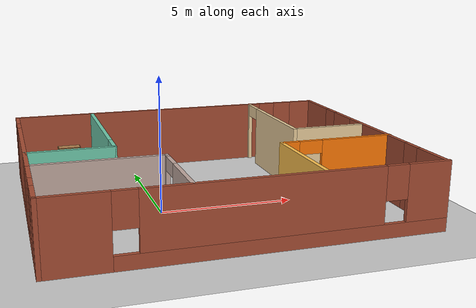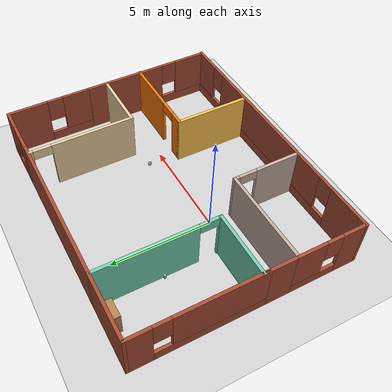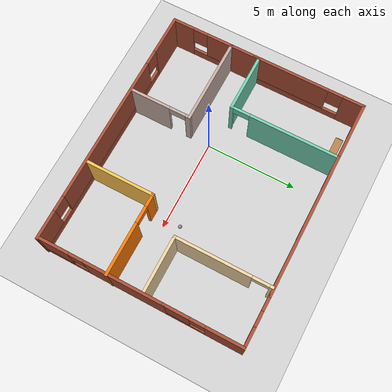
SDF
<sdf version="1.7">
 <world name="default">
  <model name="ground_plane">
   <static>1</static>
   <link name="link">
    <collision name="collision_collision">
     <geometry><plane><normal>0 0 1</normal><size>100 100</size></plane></geometry>
     <surface>
      <contact><collide_bitmask>65535</collide_bitmask></contact>
      <friction><ode><mu>100</mu><mu2>50</mu2></ode></friction>
     </surface>
    </collision>
    <visual name="visual_visual">
     <cast_shadows>0</cast_shadows>
     <geometry><plane><normal>0 0 1</normal><size>100 100</size></plane></geometry>
     <material>
      <script><uri>file://media/materials/scripts/gazebo.material</uri><name>Gazebo/Grey</name></script>
     </material>
    </visual>
   </link>
  </model>
  <model name="bookshelf">
   <static>1</static>
   <link name="link">
    <inertial><mass>1</mass></inertial>
    <collision name="collision_back">
     <pose>0 0.005 0.6 0 -0 0</pose>
     <geometry><box><size>0.9 0.01 1.2</size></box></geometry>
    </collision>
    <visual name="visual_visual1">
     <pose>0 0.005 0.6 0 -0 0</pose>
     <geometry><box><size>0.9 0.01 1.2</size></box></geometry>
     <material>
      <script><uri>file://media/materials/scripts/gazebo.material</uri><name>Gazebo/Wood</name></script>
     </material>
    </visual>
    <collision name="collision_left_side">
     <pose>0.45 -0.195 0.6 0 -0 0</pose>
     <geometry><box><size>0.02 0.4 1.2</size></box></geometry>
    </collision>
    <visual name="visual_visual2">
     <pose>0.45 -0.195 0.6 0 -0 0</pose>
     <geometry><box><size>0.02 0.4 1.2</size></box></geometry>
     <material>
      <script><uri>file://media/materials/scripts/gazebo.material</uri><name>Gazebo/Wood</name></script>
     </material>
    </visual>
    <collision name="collision_right_side">
     <pose>-0.45 -0.195 0.6 0 -0 0</pose>
     <geometry><box><size>0.02 0.4 1.2</size></box></geometry>
    </collision>
    <visual name="visual_visual3">
     <pose>-0.45 -0.195 0.6 0 -0 0</pose>
     <geometry><box><size>0.02 0.4 1.2</size></box></geometry>
     <material>
      <script><uri>file://media/materials/scripts/gazebo.material</uri><name>Gazebo/Wood</name></script>
     </material>
    </visual>
    <collision name="collision_bottom">
     <pose>0 -0.195 0.03 0 -0 0</pose>
     <geometry><box><size>0.88 0.4 0.06</size></box></geometry>
    </collision>
    <visual name="visual_visual4">
     <pose>0 -0.195 0.03 0 -0 0</pose>
     <geometry><box><size>0.88 0.4 0.06</size></box></geometry>
     <material>
      <script><uri>file://media/materials/scripts/gazebo.material</uri><name>Gazebo/Wood</name></script>
     </material>
    </visual>
    <collision name="collision_top">
     <pose>0 -0.195 1.19 0 -0 0</pose>
     <geometry><box><size>0.88 0.4 0.02</size></box></geometry>
    </collision>
    <visual name="visual_visual5">
     <pose>0 -0.195 1.19 0 -0 0</pose>
     <geometry><box><size>0.88 0.4 0.02</size></box></geometry>
     <material>
      <script><uri>file://media/materials/scripts/gazebo.material</uri><name>Gazebo/Wood</name></script>
     </material>
    </visual>
    <collision name="collision_low_shelf">
     <pose>0 -0.195 0.43 0 -0 0</pose>
     <geometry><box><size>0.88 0.4 0.02</size></box></geometry>
    </collision>
    <visual name="visual_visual6">
     <pose>0 -0.195 0.43 0 -0 0</pose>
     <geometry><box><size>0.88 0.4 0.02</size></box></geometry>
     <material>
      <script><uri>file://media/materials/scripts/gazebo.material</uri><name>Gazebo/Wood</name></script>
     </material>
    </visual>
    <collision name="collision_high_shelf">
     <pose>0 -0.195 0.8 0 -0 0</pose>
     <geometry><box><size>0.88 0.4 0.02</size></box></geometry>
    </collision>
    <visual name="visual_visual7">
     <pose>0 -0.195 0.8 0 -0 0</pose>
     <geometry><box><size>0.88 0.4 0.02</size></box></geometry>
     <material>
      <script><uri>file://media/materials/scripts/gazebo.material</uri><name>Gazebo/Wood</name></script>
     </material>
    </visual>
   </link>
   <pose>-2.61093 6.16399 0 0 -0 0</pose>
  </model>
  <model name="beer">
   <link name="link">
    <pose>0 0 0.115 0 -0 0</pose>
    <inertial>
     <mass>0.39</mass>
     <inertia><ixx>0.00058</ixx><ixy>0</ixy><ixz>0</ixz><iyy>0.00058</iyy><iyz>0</iyz><izz>0.00019</izz></inertia>
    </inertial>
    <collision name="collision_collision">
     <geometry><cylinder><radius>0.055</radius><length>0.23</length></cylinder></geometry>
    </collision>
    <visual name="visual_visual">
     <geometry><cylinder><radius>0.055</radius><length>0.23</length></cylinder></geometry>
     <material>
      <script>
       <uri>model://beer/materials/scripts</uri>
       <uri>model://beer/materials/textures</uri>
       <name>Beer/Diffuse</name>
      </script>
     </material>
    </visual>
   </link>
   <pose>-1.67 3.16597 -2e-06 0 -0 -9.2e-05</pose>
  </model>
  <model name="new_building">
   <pose>2.035 0.93 0 0 -0 0</pose>
   <link name="Wall_0">
    <pose>0 -5.4 0 0 -0 0</pose>
    <visual name="Wall_0_Visual_0">
     <pose>-5.63828 0 1.25 0 -0 0</pose>
     <geometry><box><size>2.22345 0.15 2.5</size></box></geometry>
     <material>
      <script><uri>file://media/materials/scripts/gazebo.material</uri><name>Gazebo/Bricks</name></script>
      <ambient>0.996078 0.47451 0.0196078 1</ambient>
     </material>
     <meta><layer>0</layer></meta>
    </visual>
    <collision name="Wall_0_Collision_0">
     <geometry><box><size>2.22345 0.15 2.5</size></box></geometry>
     <pose>-5.63828 0 1.25 0 -0 0</pose>
    </collision>
    <visual name="Wall_0_Visual_1">
     <pose>1.11173 0 0.25 0 -0 0</pose>
     <geometry><box><size>11.2766 0.15 0.5</size></box></geometry>
     <material>
      <script><uri>file://media/materials/scripts/gazebo.material</uri><name>Gazebo/Bricks</name></script>
      <ambient>0.996078 0.47451 0.0196078 1</ambient>
     </material>
     <meta><layer>0</layer></meta>
    </visual>
    <collision name="Wall_0_Collision_1">
     <geometry><box><size>11.2766 0.15 0.5</size></box></geometry>
     <pose>1.11173 0 0.25 0 -0 0</pose>
    </collision>
    <visual name="Wall_0_Visual_2">
     <pose>0.325624 0 1.5 0 -0 0</pose>
     <geometry><box><size>8.10435 0.15 2</size></box></geometry>
     <material>
      <script><uri>file://media/materials/scripts/gazebo.material</uri><name>Gazebo/Bricks</name></script>
      <ambient>0.996078 0.47451 0.0196078 1</ambient>
     </material>
     <meta><layer>0</layer></meta>
    </visual>
    <collision name="Wall_0_Collision_2">
     <geometry><box><size>8.10435 0.15 2</size></box></geometry>
     <pose>0.325624 0 1.5 0 -0 0</pose>
    </collision>
    <visual name="Wall_0_Visual_3">
     <pose>5.9639 0 1.5 0 -0 0</pose>
     <geometry><box><size>1.5722 0.15 2</size></box></geometry>
     <material>
      <script><uri>file://media/materials/scripts/gazebo.material</uri><name>Gazebo/Bricks</name></script>
      <ambient>0.996078 0.47451 0.0196078 1</ambient>
     </material>
     <meta><layer>0</layer></meta>
    </visual>
    <collision name="Wall_0_Collision_3">
     <geometry><box><size>1.5722 0.15 2</size></box></geometry>
     <pose>5.9639 0 1.5 0 -0 0</pose>
    </collision>
    <visual name="Wall_0_Visual_4">
     <pose>-4.12655 0 1.9 0 -0 0</pose>
     <geometry><box><size>0.8 0.15 1.2</size></box></geometry>
     <material>
      <script><uri>file://media/materials/scripts/gazebo.material</uri><name>Gazebo/Bricks</name></script>
      <ambient>0.996078 0.47451 0.0196078 1</ambient>
     </material>
     <meta><layer>0</layer></meta>
    </visual>
    <collision name="Wall_0_Collision_4">
     <geometry><box><size>0.8 0.15 1.2</size></box></geometry>
     <pose>-4.12655 0 1.9 0 -0 0</pose>
    </collision>
    <visual name="Wall_0_Visual_5">
     <pose>4.7778 0 1.9 0 -0 0</pose>
     <geometry><box><size>0.8 0.15 1.2</size></box></geometry>
     <material>
      <script><uri>file://media/materials/scripts/gazebo.material</uri><name>Gazebo/Bricks</name></script>
      <ambient>0.996078 0.47451 0.0196078 1</ambient>
     </material>
     <meta><layer>0</layer></meta>
    </visual>
    <collision name="Wall_0_Collision_5">
     <geometry><box><size>0.8 0.15 1.2</size></box></geometry>
     <pose>4.7778 0 1.9 0 -0 0</pose>
    </collision>
   </link>
   <link name="Wall_10">
    <pose>-3.575 2.475 0 0 -0 1.5708</pose>
    <visual name="Wall_10_Visual_0">
     <pose>-2.90343 0 1.25 0 -0 0</pose>
     <geometry><box><size>0.193143 0.15 2.5</size></box></geometry>
     <material>
      <script><uri>file://media/materials/scripts/gazebo.material</uri><name>Gazebo/Grey</name></script>
      <ambient>0.435294 0.796078 0.67451 1</ambient>
     </material>
     <meta><layer>0</layer></meta>
    </visual>
    <collision name="Wall_10_Collision_0">
     <geometry><box><size>0.193143 0.15 2.5</size></box></geometry>
     <pose>-2.90343 0 1.25 0 -0 0</pose>
    </collision>
    <visual name="Wall_10_Visual_1">
     <pose>0.546572 0 1.25 0 -0 0</pose>
     <geometry><box><size>4.90686 0.15 2.5</size></box></geometry>
     <material>
      <script><uri>file://media/materials/scripts/gazebo.material</uri><name>Gazebo/Grey</name></script>
      <ambient>0.435294 0.796078 0.67451 1</ambient>
     </material>
     <meta><layer>0</layer></meta>
    </visual>
    <collision name="Wall_10_Collision_1">
     <geometry><box><size>4.90686 0.15 2.5</size></box></geometry>
     <pose>0.546572 0 1.25 0 -0 0</pose>
    </collision>
    <visual name="Wall_10_Visual_2">
     <pose>-2.35686 0 2.25 0 -0 0</pose>
     <geometry><box><size>0.9 0.15 0.5</size></box></geometry>
     <material>
      <script><uri>file://media/materials/scripts/gazebo.material</uri><name>Gazebo/Grey</name></script>
      <ambient>0.435294 0.796078 0.67451 1</ambient>
     </material>
     <meta><layer>0</layer></meta>
    </visual>
    <collision name="Wall_10_Collision_2">
     <geometry><box><size>0.9 0.15 0.5</size></box></geometry>
     <pose>-2.35686 0 2.25 0 -0 0</pose>
    </collision>
   </link>
   <link name="Wall_11">
    <collision name="Wall_11_Collision">
     <geometry><box><size>3.25 0.15 2.5</size></box></geometry>
     <pose>0 0 1.25 0 -0 0</pose>
    </collision>
    <visual name="Wall_11_Visual">
     <pose>0 0 1.25 0 -0 0</pose>
     <geometry><box><size>3.25 0.15 2.5</size></box></geometry>
     <material>
      <script><uri>file://media/materials/scripts/gazebo.material</uri><name>Gazebo/Bricks</name></script>
      <ambient>0.996078 0.47451 0.0196078 1</ambient>
     </material>
     <meta><layer>0</layer></meta>
    </visual>
    <pose>-5.125 5.4 0 0 -0 3.14159</pose>
   </link>
   <link name="Wall_12">
    <pose>-6.675 2.35 0 0 -0 -1.5708</pose>
    <visual name="Wall_12_Visual_0">
     <pose>-2.52483 0 1.25 0 -0 0</pose>
     <geometry><box><size>1.20033 0.15 2.5</size></box></geometry>
     <material>
      <script><uri>file://media/materials/scripts/gazebo.material</uri><name>Gazebo/Bricks</name></script>
      <ambient>0.996078 0.47451 0.0196078 1</ambient>
     </material>
     <meta><layer>0</layer></meta>
    </visual>
    <collision name="Wall_12_Collision_0">
     <geometry><box><size>1.20033 0.15 2.5</size></box></geometry>
     <pose>-2.52483 0 1.25 0 -0 0</pose>
    </collision>
    <visual name="Wall_12_Visual_1">
     <pose>0.600168 0 0.25 0 -0 0</pose>
     <geometry><box><size>5.04967 0.15 0.5</size></box></geometry>
     <material>
      <script><uri>file://media/materials/scripts/gazebo.material</uri><name>Gazebo/Bricks</name></script>
      <ambient>0.996078 0.47451 0.0196078 1</ambient>
     </material>
     <meta><layer>0</layer></meta>
    </visual>
    <collision name="Wall_12_Collision_1">
     <geometry><box><size>5.04967 0.15 0.5</size></box></geometry>
     <pose>0.600168 0 0.25 0 -0 0</pose>
    </collision>
    <visual name="Wall_12_Visual_2">
     <pose>1.00017 0 1.5 0 -0 0</pose>
     <geometry><box><size>4.24967 0.15 2</size></box></geometry>
     <material>
      <script><uri>file://media/materials/scripts/gazebo.material</uri><name>Gazebo/Bricks</name></script>
      <ambient>0.996078 0.47451 0.0196078 1</ambient>
     </material>
     <meta><layer>0</layer></meta>
    </visual>
    <collision name="Wall_12_Collision_2">
     <geometry><box><size>4.24967 0.15 2</size></box></geometry>
     <pose>1.00017 0 1.5 0 -0 0</pose>
    </collision>
    <visual name="Wall_12_Visual_3">
     <pose>-1.52466 0 1.9 0 -0 0</pose>
     <geometry><box><size>0.8 0.15 1.2</size></box></geometry>
     <material>
      <script><uri>file://media/materials/scripts/gazebo.material</uri><name>Gazebo/Bricks</name></script>
      <ambient>0.996078 0.47451 0.0196078 1</ambient>
     </material>
     <meta><layer>0</layer></meta>
    </visual>
    <collision name="Wall_12_Collision_3">
     <geometry><box><size>0.8 0.15 1.2</size></box></geometry>
     <pose>-1.52466 0 1.9 0 -0 0</pose>
    </collision>
   </link>
   <link name="Wall_14">
    <collision name="Wall_14_Collision">
     <geometry><box><size>7.75 0.15 2.5</size></box></geometry>
     <pose>0 0 1.25 0 -0 0</pose>
    </collision>
    <visual name="Wall_14_Visual">
     <pose>0 0 1.25 0 -0 0</pose>
     <geometry><box><size>7.75 0.15 2.5</size></box></geometry>
     <material>
      <script><uri>file://media/materials/scripts/gazebo.material</uri><name>Gazebo/Bricks</name></script>
      <ambient>0.996078 0.47451 0.0196078 1</ambient>
     </material>
     <meta><layer>0</layer></meta>
    </visual>
    <pose>0.225 5.4 0 0 -0 0</pose>
   </link>
   <link name="Wall_15">
    <pose>5.325 5.4 0 0 -0 0</pose>
    <visual name="Wall_15_Visual_0">
     <pose>-0.952406 0 1.25 0 -0 0</pose>
     <geometry><box><size>0.845189 0.15 2.5</size></box></geometry>
     <material>
      <script><uri>file://media/materials/scripts/gazebo.material</uri><name>Gazebo/Bricks</name></script>
      <ambient>0.996078 0.47451 0.0196078 1</ambient>
     </material>
     <meta><layer>0</layer></meta>
    </visual>
    <collision name="Wall_15_Collision_0">
     <geometry><box><size>0.845189 0.15 2.5</size></box></geometry>
     <pose>-0.952406 0 1.25 0 -0 0</pose>
    </collision>
    <visual name="Wall_15_Visual_1">
     <pose>0.422594 0 0.25 0 -0 0</pose>
     <geometry><box><size>1.90481 0.15 0.5</size></box></geometry>
     <material>
      <script><uri>file://media/materials/scripts/gazebo.material</uri><name>Gazebo/Bricks</name></script>
      <ambient>0.996078 0.47451 0.0196078 1</ambient>
     </material>
     <meta><layer>0</layer></meta>
    </visual>
    <collision name="Wall_15_Collision_1">
     <geometry><box><size>1.90481 0.15 0.5</size></box></geometry>
     <pose>0.422594 0 0.25 0 -0 0</pose>
    </collision>
    <visual name="Wall_15_Visual_2">
     <pose>0.822594 0 1.5 0 -0 0</pose>
     <geometry><box><size>1.10481 0.15 2</size></box></geometry>
     <material>
      <script><uri>file://media/materials/scripts/gazebo.material</uri><name>Gazebo/Bricks</name></script>
      <ambient>0.996078 0.47451 0.0196078 1</ambient>
     </material>
     <meta><layer>0</layer></meta>
    </visual>
    <collision name="Wall_15_Collision_2">
     <geometry><box><size>1.10481 0.15 2</size></box></geometry>
     <pose>0.822594 0 1.5 0 -0 0</pose>
    </collision>
    <visual name="Wall_15_Visual_3">
     <pose>-0.129811 0 1.9 0 -0 0</pose>
     <geometry><box><size>0.8 0.15 1.2</size></box></geometry>
     <material>
      <script><uri>file://media/materials/scripts/gazebo.material</uri><name>Gazebo/Bricks</name></script>
      <ambient>0.996078 0.47451 0.0196078 1</ambient>
     </material>
     <meta><layer>0</layer></meta>
    </visual>
    <collision name="Wall_15_Collision_3">
     <geometry><box><size>0.8 0.15 1.2</size></box></geometry>
     <pose>-0.129811 0 1.9 0 -0 0</pose>
    </collision>
   </link>
   <link name="Wall_16">
    <pose>6.625 3.35 0 0 -0 -1.5708</pose>
    <visual name="Wall_16_Visual_0">
     <pose>-1.10744 0 1.25 0 -0 0</pose>
     <geometry><box><size>2.03512 0.15 2.5</size></box></geometry>
     <material>
      <script><uri>file://media/materials/scripts/gazebo.material</uri><name>Gazebo/Bricks</name></script>
      <ambient>0.996078 0.47451 0.0196078 1</ambient>
     </material>
     <meta><layer>0</layer></meta>
    </visual>
    <collision name="Wall_16_Collision_0">
     <geometry><box><size>2.03512 0.15 2.5</size></box></geometry>
     <pose>-1.10744 0 1.25 0 -0 0</pose>
    </collision>
    <visual name="Wall_16_Visual_1">
     <pose>1.01756 0 0.25 0 -0 0</pose>
     <geometry><box><size>2.21488 0.15 0.5</size></box></geometry>
     <material>
      <script><uri>file://media/materials/scripts/gazebo.material</uri><name>Gazebo/Bricks</name></script>
      <ambient>0.996078 0.47451 0.0196078 1</ambient>
     </material>
     <meta><layer>0</layer></meta>
    </visual>
    <collision name="Wall_16_Collision_1">
     <geometry><box><size>2.21488 0.15 0.5</size></box></geometry>
     <pose>1.01756 0 0.25 0 -0 0</pose>
    </collision>
    <visual name="Wall_16_Visual_2">
     <pose>1.41756 0 1.5 0 -0 0</pose>
     <geometry><box><size>1.41488 0.15 2</size></box></geometry>
     <material>
      <script><uri>file://media/materials/scripts/gazebo.material</uri><name>Gazebo/Bricks</name></script>
      <ambient>0.996078 0.47451 0.0196078 1</ambient>
     </material>
     <meta><layer>0</layer></meta>
    </visual>
    <collision name="Wall_16_Collision_2">
     <geometry><box><size>1.41488 0.15 2</size></box></geometry>
     <pose>1.41756 0 1.5 0 -0 0</pose>
    </collision>
    <visual name="Wall_16_Visual_3">
     <pose>0.310118 0 1.9 0 -0 0</pose>
     <geometry><box><size>0.8 0.15 1.2</size></box></geometry>
     <material>
      <script><uri>file://media/materials/scripts/gazebo.material</uri><name>Gazebo/Bricks</name></script>
      <ambient>0.996078 0.47451 0.0196078 1</ambient>
     </material>
     <meta><layer>0</layer></meta>
    </visual>
    <collision name="Wall_16_Collision_3">
     <geometry><box><size>0.8 0.15 1.2</size></box></geometry>
     <pose>0.310118 0 1.9 0 -0 0</pose>
    </collision>
   </link>
   <link name="Wall_17">
    <pose>6.625 -2 0 0 -0 -1.5708</pose>
    <visual name="Wall_17_Visual_0">
     <pose>-1.22483 0 1.25 0 -0 0</pose>
     <geometry><box><size>4.30033 0.15 2.5</size></box></geometry>
     <material>
      <script><uri>file://media/materials/scripts/gazebo.material</uri><name>Gazebo/Bricks</name></script>
      <ambient>0.996078 0.47451 0.0196078 1</ambient>
     </material>
     <meta><layer>0</layer></meta>
    </visual>
    <collision name="Wall_17_Collision_0">
     <geometry><box><size>4.30033 0.15 2.5</size></box></geometry>
     <pose>-1.22483 0 1.25 0 -0 0</pose>
    </collision>
    <visual name="Wall_17_Visual_1">
     <pose>2.15017 0 0.25 0 -0 0</pose>
     <geometry><box><size>2.44966 0.15 0.5</size></box></geometry>
     <material>
      <script><uri>file://media/materials/scripts/gazebo.material</uri><name>Gazebo/Bricks</name></script>
      <ambient>0.996078 0.47451 0.0196078 1</ambient>
     </material>
     <meta><layer>0</layer></meta>
    </visual>
    <collision name="Wall_17_Collision_1">
     <geometry><box><size>2.44966 0.15 0.5</size></box></geometry>
     <pose>2.15017 0 0.25 0 -0 0</pose>
    </collision>
    <visual name="Wall_17_Visual_2">
     <pose>2.55017 0 1.5 0 -0 0</pose>
     <geometry><box><size>1.64966 0.15 2</size></box></geometry>
     <material>
      <script><uri>file://media/materials/scripts/gazebo.material</uri><name>Gazebo/Bricks</name></script>
      <ambient>0.996078 0.47451 0.0196078 1</ambient>
     </material>
     <meta><layer>0</layer></meta>
    </visual>
    <collision name="Wall_17_Collision_2">
     <geometry><box><size>1.64966 0.15 2</size></box></geometry>
     <pose>2.55017 0 1.5 0 -0 0</pose>
    </collision>
    <visual name="Wall_17_Visual_3">
     <pose>1.32533 0 1.9 0 -0 0</pose>
     <geometry><box><size>0.8 0.15 1.2</size></box></geometry>
     <material>
      <script><uri>file://media/materials/scripts/gazebo.material</uri><name>Gazebo/Bricks</name></script>
      <ambient>0.996078 0.47451 0.0196078 1</ambient>
     </material>
     <meta><layer>0</layer></meta>
    </visual>
    <collision name="Wall_17_Collision_3">
     <geometry><box><size>0.8 0.15 1.2</size></box></geometry>
     <pose>1.32533 0 1.9 0 -0 0</pose>
    </collision>
   </link>
   <link name="Wall_19">
    <pose>3.62997 2.78553 0 0 -0 -1.5708</pose>
    <visual name="Wall_19_Visual_0">
     <pose>-2.51685 0 1.25 0 -0 0</pose>
     <geometry><box><size>0.216304 0.15 2.5</size></box></geometry>
     <material>
      <script><uri>file://media/materials/scripts/gazebo.material</uri><name>Gazebo/Grey</name></script>
      <ambient>0.921569 0.807843 0.615686 1</ambient>
     </material>
     <meta><layer>0</layer></meta>
    </visual>
    <collision name="Wall_19_Collision_0">
     <geometry><box><size>0.216304 0.15 2.5</size></box></geometry>
     <pose>-2.51685 0 1.25 0 -0 0</pose>
    </collision>
    <visual name="Wall_19_Visual_1">
     <pose>0.558152 0 1.25 0 -0 0</pose>
     <geometry><box><size>4.1337 0.15 2.5</size></box></geometry>
     <material>
      <script><uri>file://media/materials/scripts/gazebo.material</uri><name>Gazebo/Grey</name></script>
      <ambient>0.921569 0.807843 0.615686 1</ambient>
     </material>
     <meta><layer>0</layer></meta>
    </visual>
    <collision name="Wall_19_Collision_1">
     <geometry><box><size>4.1337 0.15 2.5</size></box></geometry>
     <pose>0.558152 0 1.25 0 -0 0</pose>
    </collision>
    <visual name="Wall_19_Visual_2">
     <pose>-1.9587 0 2.25 0 -0 0</pose>
     <geometry><box><size>0.9 0.15 0.5</size></box></geometry>
     <material>
      <script><uri>file://media/materials/scripts/gazebo.material</uri><name>Gazebo/Grey</name></script>
      <ambient>0.921569 0.807843 0.615686 1</ambient>
     </material>
     <meta><layer>0</layer></meta>
    </visual>
    <collision name="Wall_19_Collision_2">
     <geometry><box><size>0.9 0.15 0.5</size></box></geometry>
     <pose>-1.9587 0 2.25 0 -0 0</pose>
    </collision>
   </link>
   <link name="Wall_2">
    <pose>-6.675 -3.725 0 0 -0 1.5708</pose>
    <visual name="Wall_2_Visual_0">
     <pose>-1.13604 0 1.25 0 -0 0</pose>
     <geometry><box><size>1.22793 0.15 2.5</size></box></geometry>
     <material>
      <script><uri>file://media/materials/scripts/gazebo.material</uri><name>Gazebo/Bricks</name></script>
      <ambient>0.996078 0.47451 0.0196078 1</ambient>
     </material>
     <meta><layer>0</layer></meta>
    </visual>
    <collision name="Wall_2_Collision_0">
     <geometry><box><size>1.22793 0.15 2.5</size></box></geometry>
     <pose>-1.13604 0 1.25 0 -0 0</pose>
    </collision>
    <visual name="Wall_2_Visual_1">
     <pose>0.613963 0 0.25 0 -0 0</pose>
     <geometry><box><size>2.27207 0.15 0.5</size></box></geometry>
     <material>
      <script><uri>file://media/materials/scripts/gazebo.material</uri><name>Gazebo/Bricks</name></script>
      <ambient>0.996078 0.47451 0.0196078 1</ambient>
     </material>
     <meta><layer>0</layer></meta>
    </visual>
    <collision name="Wall_2_Collision_1">
     <geometry><box><size>2.27207 0.15 0.5</size></box></geometry>
     <pose>0.613963 0 0.25 0 -0 0</pose>
    </collision>
    <visual name="Wall_2_Visual_2">
     <pose>1.01396 0 1.5 0 -0 0</pose>
     <geometry><box><size>1.47207 0.15 2</size></box></geometry>
     <material>
      <script><uri>file://media/materials/scripts/gazebo.material</uri><name>Gazebo/Bricks</name></script>
      <ambient>0.996078 0.47451 0.0196078 1</ambient>
     </material>
     <meta><layer>0</layer></meta>
    </visual>
    <collision name="Wall_2_Collision_2">
     <geometry><box><size>1.47207 0.15 2</size></box></geometry>
     <pose>1.01396 0 1.5 0 -0 0</pose>
    </collision>
    <visual name="Wall_2_Visual_3">
     <pose>-0.122074 0 1.9 0 -0 0</pose>
     <geometry><box><size>0.8 0.15 1.2</size></box></geometry>
     <material>
      <script><uri>file://media/materials/scripts/gazebo.material</uri><name>Gazebo/Bricks</name></script>
      <ambient>0.996078 0.47451 0.0196078 1</ambient>
     </material>
     <meta><layer>0</layer></meta>
    </visual>
    <collision name="Wall_2_Collision_3">
     <geometry><box><size>0.8 0.15 1.2</size></box></geometry>
     <pose>-0.122074 0 1.9 0 -0 0</pose>
    </collision>
   </link>
   <link name="Wall_20">
    <collision name="Wall_20_Collision">
     <geometry><box><size>3 0.15 2.5</size></box></geometry>
     <pose>0 0 1.25 0 -0 0</pose>
    </collision>
    <visual name="Wall_20_Visual">
     <pose>0 0 1.25 0 -0 0</pose>
     <geometry><box><size>3 0.15 2.5</size></box></geometry>
     <material>
      <script><uri>file://media/materials/scripts/gazebo.material</uri><name>Gazebo/Grey</name></script>
      <ambient>0.921569 0.807843 0.615686 1</ambient>
     </material>
     <meta><layer>0</layer></meta>
    </visual>
    <pose>5.05497 0.235534 0 0 -0 0</pose>
   </link>
   <link name="Wall_22">
    <collision name="Wall_22_Collision">
     <geometry><box><size>3.75 0.15 2.5</size></box></geometry>
     <pose>0 0 1.25 0 -0 0</pose>
    </collision>
    <visual name="Wall_22_Visual">
     <pose>0 0 1.25 0 -0 0</pose>
     <geometry><box><size>3.75 0.15 2.5</size></box></geometry>
     <material>
      <script><uri>file://media/materials/scripts/gazebo.material</uri><name>Gazebo/Grey</name></script>
      <ambient>1 0.764706 0.305882 1</ambient>
     </material>
     <meta><layer>0</layer></meta>
    </visual>
    <pose>2.30823 -3.47316 0 0 -0 1.5708</pose>
   </link>
   <link name="Wall_23">
    <pose>4.48323 -1.67316 0 0 -0 0</pose>
    <visual name="Wall_23_Visual_0">
     <pose>-1.88098 0 1.25 0 -0 0</pose>
     <geometry><box><size>0.738043 0.15 2.5</size></box></geometry>
     <material>
      <script><uri>file://media/materials/scripts/gazebo.material</uri><name>Gazebo/Grey</name></script>
      <ambient>0.996078 0.47451 0.0196078 1</ambient>
     </material>
     <meta><layer>0</layer></meta>
    </visual>
    <collision name="Wall_23_Collision_0">
     <geometry><box><size>0.738043 0.15 2.5</size></box></geometry>
     <pose>-1.88098 0 1.25 0 -0 0</pose>
    </collision>
    <visual name="Wall_23_Visual_1">
     <pose>0.819022 0 1.25 0 -0 0</pose>
     <geometry><box><size>2.86196 0.15 2.5</size></box></geometry>
     <material>
      <script><uri>file://media/materials/scripts/gazebo.material</uri><name>Gazebo/Grey</name></script>
      <ambient>0.996078 0.47451 0.0196078 1</ambient>
     </material>
     <meta><layer>0</layer></meta>
    </visual>
    <collision name="Wall_23_Collision_1">
     <geometry><box><size>2.86196 0.15 2.5</size></box></geometry>
     <pose>0.819022 0 1.25 0 -0 0</pose>
    </collision>
    <visual name="Wall_23_Visual_2">
     <pose>-1.06196 0 2.25 0 -0 0</pose>
     <geometry><box><size>0.9 0.15 0.5</size></box></geometry>
     <material>
      <script><uri>file://media/materials/scripts/gazebo.material</uri><name>Gazebo/Grey</name></script>
      <ambient>0.996078 0.47451 0.0196078 1</ambient>
     </material>
     <meta><layer>0</layer></meta>
    </visual>
    <collision name="Wall_23_Collision_2">
     <geometry><box><size>0.9 0.15 0.5</size></box></geometry>
     <pose>-1.06196 0 2.25 0 -0 0</pose>
    </collision>
   </link>
   <link name="Wall_4">
    <collision name="Wall_4_Collision">
     <geometry><box><size>4.75 0.15 2.5</size></box></geometry>
     <pose>0 0 1.25 0 -0 0</pose>
    </collision>
    <visual name="Wall_4_Visual">
     <pose>0 0 1.25 0 -0 0</pose>
     <geometry><box><size>4.75 0.15 2.5</size></box></geometry>
     <material>
      <script><uri>file://media/materials/scripts/gazebo.material</uri><name>Gazebo/Grey</name></script>
      <ambient>0.760784 0.662745 0.627451 1</ambient>
     </material>
     <meta><layer>0</layer></meta>
    </visual>
    <pose>-4.375 -2.05 0 0 -0 0</pose>
   </link>
   <link name="Wall_6">
    <pose>-2.075 -3.725 0 0 -0 -1.5708</pose>
    <visual name="Wall_6_Visual_0">
     <pose>-1.60399 0 1.25 0 -0 0</pose>
     <geometry><box><size>0.292025 0.15 2.5</size></box></geometry>
     <material>
      <script><uri>file://media/materials/scripts/gazebo.material</uri><name>Gazebo/Grey</name></script>
      <ambient>0.760784 0.662745 0.627451 1</ambient>
     </material>
     <meta><layer>0</layer></meta>
    </visual>
    <collision name="Wall_6_Collision_0">
     <geometry><box><size>0.292025 0.15 2.5</size></box></geometry>
     <pose>-1.60399 0 1.25 0 -0 0</pose>
    </collision>
    <visual name="Wall_6_Visual_1">
     <pose>0.596013 0 1.25 0 -0 0</pose>
     <geometry><box><size>2.30797 0.15 2.5</size></box></geometry>
     <material>
      <script><uri>file://media/materials/scripts/gazebo.material</uri><name>Gazebo/Grey</name></script>
      <ambient>0.760784 0.662745 0.627451 1</ambient>
     </material>
     <meta><layer>0</layer></meta>
    </visual>
    <collision name="Wall_6_Collision_1">
     <geometry><box><size>2.30797 0.15 2.5</size></box></geometry>
     <pose>0.596013 0 1.25 0 -0 0</pose>
    </collision>
    <visual name="Wall_6_Visual_2">
     <pose>-1.00798 0 2.25 0 -0 0</pose>
     <geometry><box><size>0.9 0.15 0.5</size></box></geometry>
     <material>
      <script><uri>file://media/materials/scripts/gazebo.material</uri><name>Gazebo/Grey</name></script>
      <ambient>0.760784 0.662745 0.627451 1</ambient>
     </material>
     <meta><layer>0</layer></meta>
    </visual>
    <collision name="Wall_6_Collision_2">
     <geometry><box><size>0.9 0.15 0.5</size></box></geometry>
     <pose>-1.00798 0 2.25 0 -0 0</pose>
    </collision>
   </link>
   <link name="Wall_8">
    <collision name="Wall_8_Collision">
     <geometry><box><size>1.75 0.15 2.5</size></box></geometry>
     <pose>0 0 1.25 0 -0 0</pose>
    </collision>
    <visual name="Wall_8_Visual">
     <pose>0 0 1.25 0 -0 0</pose>
     <geometry><box><size>1.75 0.15 2.5</size></box></geometry>
     <material>
      <script><uri>file://media/materials/scripts/gazebo.material</uri><name>Gazebo/Bricks</name></script>
      <ambient>0.996078 0.47451 0.0196078 1</ambient>
     </material>
     <meta><layer>0</layer></meta>
    </visual>
    <pose>-6.675 -1.25 0 0 -0 1.5708</pose>
   </link>
   <link name="Wall_9">
    <collision name="Wall_9_Collision">
     <geometry><box><size>3.25 0.15 2.5</size></box></geometry>
     <pose>0 0 1.25 0 -0 0</pose>
    </collision>
    <visual name="Wall_9_Visual">
     <pose>0 0 1.25 0 -0 0</pose>
     <geometry><box><size>3.25 0.15 2.5</size></box></geometry>
     <material>
      <script><uri>file://media/materials/scripts/gazebo.material</uri><name>Gazebo/Grey</name></script>
      <ambient>0.435294 0.796078 0.67451 1</ambient>
     </material>
     <meta><layer>0</layer></meta>
    </visual>
    <pose>-5.125 -0.45 0 0 -0 0</pose>
   </link>
   <static>1</static>
  </model>
  <model name="my_ball">
   <link name="link_0">
    <inertial>
     <mass>1</mass>
     <inertia><ixx>0.1</ixx><ixy>0</ixy><ixz>0</ixz><iyy>0.1</iyy><iyz>0</iyz><izz>0.1</izz></inertia>
    </inertial>
    <pose>7.47301 0.234497 0.5 0 -0 0</pose>
    <visual name="visual">
     <geometry><sphere><radius>0.1</radius></sphere></geometry>
     <material>
      <lighting>1</lighting>
      <script><uri>file://media/materials/scripts/gazebo.material</uri><name>Gazebo/Grey</name></script>
      <shader type="pixel"><normal_map>__default__</normal_map></shader>
      <ambient>1 1 1 1</ambient>
      <diffuse>1 1 1 1</diffuse>
      <specular>1 1 1 1</specular>
      <emissive>1 1 1 1</emissive>
     </material>
    </visual>
    <collision name="collision">
     <geometry><sphere><radius>0.1</radius></sphere></geometry>
     <surface>
      <friction>
       <ode><mu>1</mu><mu2>1</mu2><fdir1>0 0 0</fdir1><slip1>0</slip1><slip2>0</slip2></ode>
       <torsional>
        <coefficient>1</coefficient>
        <patch_radius>0</patch_radius>
        <surface_radius>0</surface_radius>
        <use_patch_radius>1</use_patch_radius>
        <ode><slip>0</slip></ode>
       </torsional>
      </friction>
      <bounce><restitution_coefficient>0</restitution_coefficient><threshold>1e+06</threshold></bounce>
      <contact>
       <collide_without_contact>0</collide_without_contact>
       <collide_without_contact_bitmask>1</collide_without_contact_bitmask>
       <collide_bitmask>1</collide_bitmask>
       <ode>
        <soft_cfm>0</soft_cfm>
        <soft_erp>0.2</soft_erp>
        <kp>1e+13</kp>
        <kd>1</kd>
        <max_vel>0.01</max_vel>
        <min_depth>0</min_depth>
       </ode>
       <bullet>
        <split_impulse>1</split_impulse>
        <split_impulse_penetration_threshold>-0.01</split_impulse_penetration_threshold>
        <soft_cfm>0</soft_cfm>
        <soft_erp>0.2</soft_erp>
        <kp>1e+13</kp>
        <kd>1</kd>
       </bullet>
      </contact>
     </surface>
    </collision>
   </link>
   <static>0</static>
   <pose>-2.87689 0.544324 -0.4 0 -0 0</pose>
  </model>
 </world>
</sdf>
